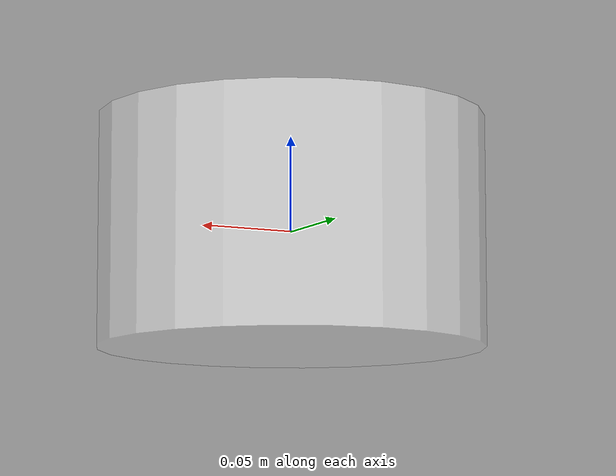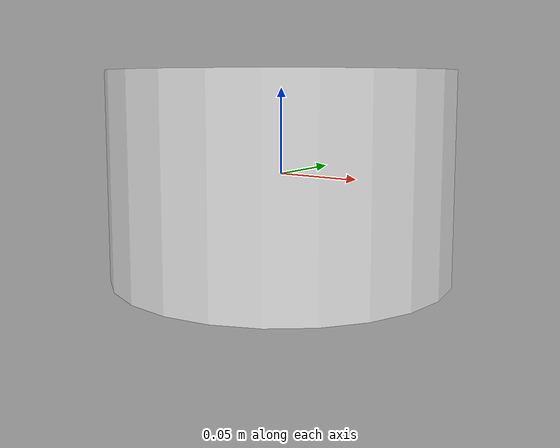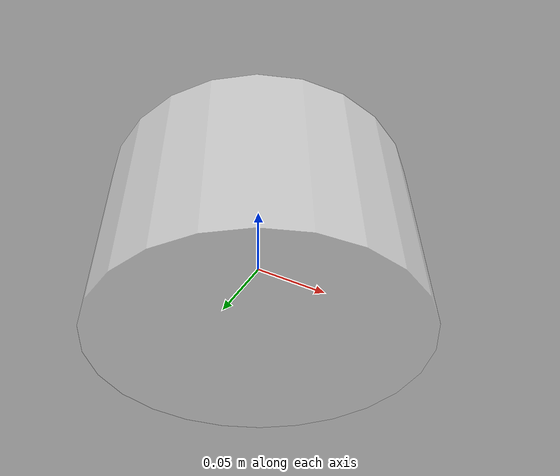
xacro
<?xml version="1.0"?>
<robot xmlns:xacro="http://www.ros.org/wiki/xacro" name="robot_name">
    <xacro:macro name="base_link" params="length radius">
        <!--机器人身体部分-->
        <link name="base_link">
            <!--外观描述-->
            <visual>
                <!--偏移和旋转-->
                <origin xyz="0.0 0.0 0.0" rpy="0.0 0.0 0.0"/>
                <!--几何形状-->
                <geometry>
                    <!--圆柱体, 单位m-->
                    <cylinder radius="${radius}" length="${length}"/>
                </geometry>
                <!--材质-->
                <material name="white">
                    <!--颜色RGBA格式-->
                    <color rgba="1 1 1 0.5"/>
                </material>
            </visual>
        </link>
    </xacro:macro>

    <xacro:macro name="imu_link" params="imu_name xyz">
        <!--机器人IMU-->
        <link name="${imu_name}_link">
            <!--外观描述-->
            <visual>
                <!--偏移和旋转-->
                <origin xyz="0.0 0.0 0.0" rpy="0.0 0.0 0.0"/>
                <!--几何形状-->
                <geometry>
                    <!--正方体, 单位m-->
                    <box size="0.02 0.02 0.02"/>
                </geometry>
                <!--材质-->
                <material name="black">
                    <!--颜色RGBA格式-->
                    <color rgba="0 0 0 0.5"/>
                </material>
            </visual>
        </link>

        <!--机器人关节-->
        <joint name="${imu_name}_joint" type="fixed">
            <!--父链接-->
            <parent link="base_link"/>
            <!--子链接-->
            <child link="${imu_name}_link"/>
            <!--偏移和旋转-->
            <origin xyz="${xyz}" rpy="0.0 0.0 0.0"/>
        </joint>
    </xacro:macro>

    <xacro:base_link length="0.12" radius="0.1"/>
    <xacro:imu_link imu_name="imu" xyz="0.0 0.0 0.03"/>
    <xacro:imu_link imu_name="imu2" xyz="0.05 0.0 0.03"/>
</robot>
